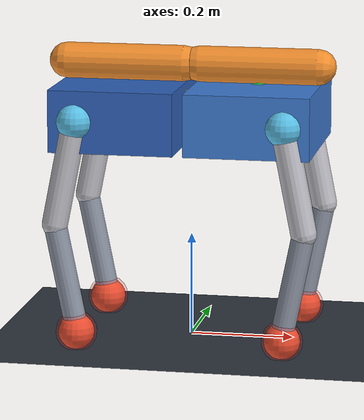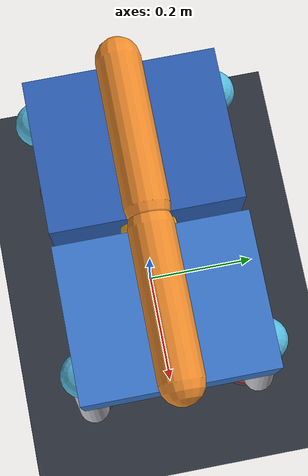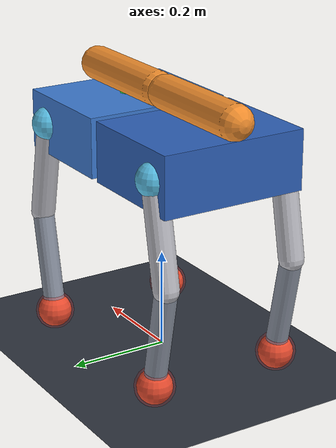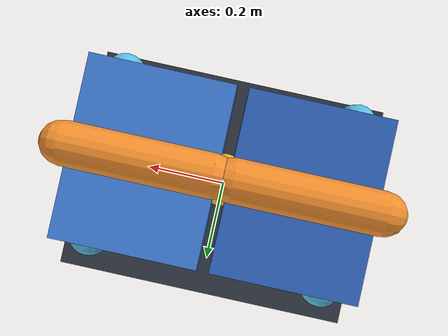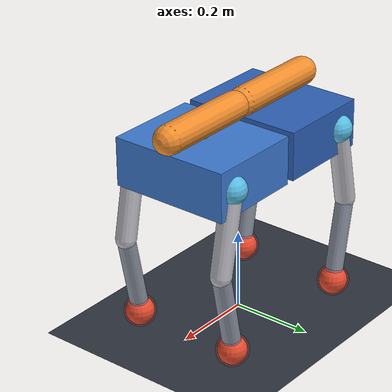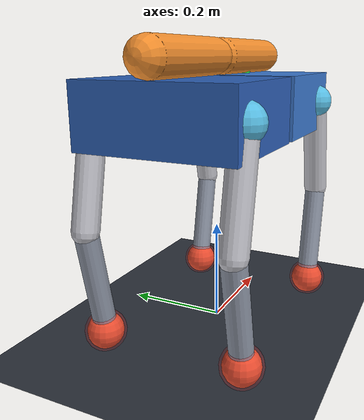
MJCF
<mujoco model="mujica-quadruped-waist-3dof">
  <compiler angle="radian" autolimits="true"/>
  <option timestep="0.002" gravity="0 0 -9.81" integrator="RK4"/>
  <default>
    <joint damping="0.4" armature="0.018" limited="true"/>
    <geom friction="0.9 0.02 0.002" condim="3" solref="0.015 1"/>
    <motor ctrllimited="true" ctrlrange="-8 8"/>
  </default>
  <worldbody>
    <light pos="0 -1 3" dir="0 0 -1"/>
    <geom name="floor" type="plane" size="5 5 0.1" rgba="0.18 0.2 0.24 1"/>
    <body name="torso" pos="0 0 0.44">
      <freejoint name="root"/>
      <geom name="front-torso-geom" type="box" pos="0.13 0 0" size="0.12 0.15 0.06" mass="2" rgba="0.24 0.48 0.82 1"/>
      <geom name="front-rollover-keel" type="capsule" fromto="0.015 0 0.095 0.245 0 0.095" size="0.035" mass="0.06" rgba="0.95 0.56 0.18 1"/>
      <site name="imu-site" pos="0.13 0 0.065" size="0.015" rgba="0.2 1 0.3 1"/>
      <site name="foot-array-site" pos="0 0 0" size="0.005" rgba="0 0 0 0"/>

      <body name="leg-fl-abductor" pos="0.20 0.14 0">
        <joint name="abd-fl" axis="1 0 0" range="-0.65 0.65"/>
        <geom type="sphere" size="0.035" mass="0.08" rgba="0.35 0.75 0.9 1"/>
        <body name="leg-fl-upper">
          <joint name="hip-fl" axis="0 1 0" range="-1.2 1.2"/>
          <geom type="capsule" fromto="0 0 0 0.04 0 -0.20" size="0.025" mass="0.18" rgba="0.75 0.75 0.78 1"/>
          <body name="leg-fl-lower" pos="0.04 0 -0.20">
            <joint name="knee-fl" axis="0 1 0" range="-2.2 0.1"/>
            <geom type="capsule" fromto="0 0 0 -0.04 0 -0.20" size="0.022" mass="0.16" rgba="0.55 0.58 0.64 1"/>
            <geom name="foot-fl" type="sphere" pos="-0.04 0 -0.21" size="0.035" mass="0.06" rgba="0.9 0.35 0.2 1"/>
            <site name="foot-fl-site" pos="-0.04 0 -0.21" size="0.04" rgba="1 0.2 0.2 0.25"/>
          </body>
        </body>
      </body>
      <body name="leg-fr-abductor" pos="0.20 -0.14 0">
        <joint name="abd-fr" axis="1 0 0" range="-0.65 0.65"/>
        <geom type="sphere" size="0.035" mass="0.08" rgba="0.35 0.75 0.9 1"/>
        <body name="leg-fr-upper">
          <joint name="hip-fr" axis="0 1 0" range="-1.2 1.2"/>
          <geom type="capsule" fromto="0 0 0 0.04 0 -0.20" size="0.025" mass="0.18" rgba="0.75 0.75 0.78 1"/>
          <body name="leg-fr-lower" pos="0.04 0 -0.20">
            <joint name="knee-fr" axis="0 1 0" range="-2.2 0.1"/>
            <geom type="capsule" fromto="0 0 0 -0.04 0 -0.20" size="0.022" mass="0.16" rgba="0.55 0.58 0.64 1"/>
            <geom name="foot-fr" type="sphere" pos="-0.04 0 -0.21" size="0.035" mass="0.06" rgba="0.9 0.35 0.2 1"/>
            <site name="foot-fr-site" pos="-0.04 0 -0.21" size="0.04" rgba="1 0.2 0.2 0.25"/>
          </body>
        </body>
      </body>

      <body name="waist-roll-link">
        <joint name="waist-roll" axis="1 0 0" range="-0.7 0.7" damping="1.2" armature="0.04"/>
        <geom name="waist-roll-geom" type="sphere" size="0.045" mass="0.1" rgba="0.95 0.7 0.2 1"/>
        <body name="rear-torso">
          <joint name="waist-pitch" axis="0 1 0" range="-0.7 0.7" damping="1.2" armature="0.04"/>
          <geom name="rear-torso-geom" type="box" pos="-0.13 0 0" size="0.12 0.15 0.06" mass="2.1" rgba="0.18 0.38 0.72 1"/>
          <geom name="rear-rollover-keel" type="capsule" fromto="-0.245 0 0.095 -0.015 0 0.095" size="0.035" mass="0.06" rgba="0.95 0.56 0.18 1"/>
          <body name="leg-rl-abductor" pos="-0.20 0.14 0">
            <joint name="abd-rl" axis="1 0 0" range="-0.65 0.65"/>
            <geom type="sphere" size="0.035" mass="0.08" rgba="0.35 0.75 0.9 1"/>
            <body name="leg-rl-upper">
              <joint name="hip-rl" axis="0 1 0" range="-1.2 1.2"/>
              <geom type="capsule" fromto="0 0 0 -0.04 0 -0.20" size="0.025" mass="0.18" rgba="0.75 0.75 0.78 1"/>
              <body name="leg-rl-lower" pos="-0.04 0 -0.20">
                <joint name="knee-rl" axis="0 1 0" range="-2.2 0.1"/>
                <geom type="capsule" fromto="0 0 0 0.04 0 -0.20" size="0.022" mass="0.16" rgba="0.55 0.58 0.64 1"/>
                <geom name="foot-rl" type="sphere" pos="0.04 0 -0.21" size="0.035" mass="0.06" rgba="0.9 0.35 0.2 1"/>
                <site name="foot-rl-site" pos="0.04 0 -0.21" size="0.04" rgba="1 0.2 0.2 0.25"/>
              </body>
            </body>
          </body>
          <body name="leg-rr-abductor" pos="-0.20 -0.14 0">
            <joint name="abd-rr" axis="1 0 0" range="-0.65 0.65"/>
            <geom type="sphere" size="0.035" mass="0.08" rgba="0.35 0.75 0.9 1"/>
            <body name="leg-rr-upper">
              <joint name="hip-rr" axis="0 1 0" range="-1.2 1.2"/>
              <geom type="capsule" fromto="0 0 0 -0.04 0 -0.20" size="0.025" mass="0.18" rgba="0.75 0.75 0.78 1"/>
              <body name="leg-rr-lower" pos="-0.04 0 -0.20">
                <joint name="knee-rr" axis="0 1 0" range="-2.2 0.1"/>
                <geom type="capsule" fromto="0 0 0 0.04 0 -0.20" size="0.022" mass="0.16" rgba="0.55 0.58 0.64 1"/>
                <geom name="foot-rr" type="sphere" pos="0.04 0 -0.21" size="0.035" mass="0.06" rgba="0.9 0.35 0.2 1"/>
                <site name="foot-rr-site" pos="0.04 0 -0.21" size="0.04" rgba="1 0.2 0.2 0.25"/>
              </body>
            </body>
          </body>
        </body>
      </body>
    </body>
  </worldbody>
  <sensor>
  <gyro name="body-gyro" site="imu-site"/>
  <accelerometer name="body-accelerometer" site="imu-site"/>
</sensor>

<!-- Actuator delay state is supplied by the Runtime and adds no MJCF elements. -->

<!-- Motion commands are supplied by the Runtime and add no MJCF elements. -->

<sensor>
  <touch name="foot-force-fl" site="foot-fl-site"/>
  <touch name="foot-force-fr" site="foot-fr-site"/>
  <touch name="foot-force-rl" site="foot-rl-site"/>
  <touch name="foot-force-rr" site="foot-rr-site"/>
</sensor>

  <actuator>
    <motor name="abd-fl-motor" joint="abd-fl"/><motor name="hip-fl-motor" joint="hip-fl"/><motor name="knee-fl-motor" joint="knee-fl"/>
    <motor name="abd-fr-motor" joint="abd-fr"/><motor name="hip-fr-motor" joint="hip-fr"/><motor name="knee-fr-motor" joint="knee-fr"/>
    <motor name="abd-rl-motor" joint="abd-rl"/><motor name="hip-rl-motor" joint="hip-rl"/><motor name="knee-rl-motor" joint="knee-rl"/>
    <motor name="abd-rr-motor" joint="abd-rr"/><motor name="hip-rr-motor" joint="hip-rr"/><motor name="knee-rr-motor" joint="knee-rr"/>
    <motor name="waist-roll-motor" joint="waist-roll"/><motor name="waist-pitch-motor" joint="waist-pitch"/>
  </actuator>
  <keyframe>
    <key name="home" qpos="0 0 0.44 1 0 0 0 0.15 0.15 -0.75 -0.15 0.15 -0.75 0 0 0.15 0.15 -0.75 -0.15 0.15 -0.75"/>
  </keyframe>
</mujoco>
